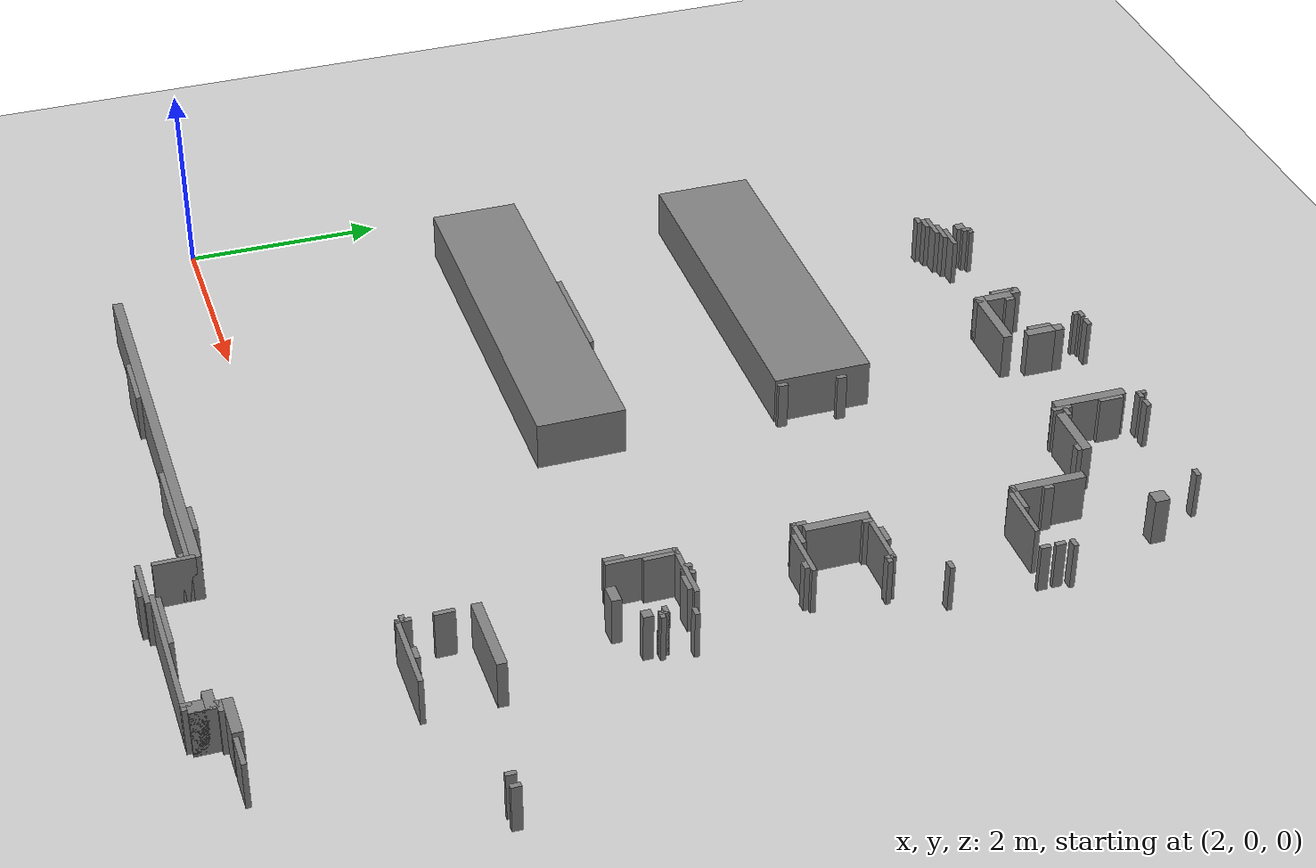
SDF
<sdf version="1.6">
 <world name="2F_world">
  <include><uri>model://ground_plane</uri></include>
  <include><uri>model://sun</uri></include>
  <model name="wall_1">
   <static>true</static>
   <pose>6.55 8.335 0.25 0 0 0</pose>
   <link name="link">
    <collision name="collision"><geometry><box><size>0.1 0.05 0.5</size></box></geometry></collision>
    <visual name="visual">
     <geometry><box><size>0.1 0.05 0.5</size></box></geometry>
     <material><ambient>0.5 0.5 0.5 1</ambient></material>
    </visual>
   </link>
  </model>
  <model name="wall_2">
   <static>true</static>
   <pose>6.7 8.335 0.25 0 0 0</pose>
   <link name="link">
    <collision name="collision"><geometry><box><size>0.1 0.05 0.5</size></box></geometry></collision>
    <visual name="visual">
     <geometry><box><size>0.1 0.05 0.5</size></box></geometry>
     <material><ambient>0.5 0.5 0.5 1</ambient></material>
    </visual>
   </link>
  </model>
  <model name="wall_3">
   <static>true</static>
   <pose>8.0 8.285 0.25 0 0 0</pose>
   <link name="link">
    <collision name="collision"><geometry><box><size>0.1 0.05 0.5</size></box></geometry></collision>
    <visual name="visual">
     <geometry><box><size>0.1 0.05 0.5</size></box></geometry>
     <material><ambient>0.5 0.5 0.5 1</ambient></material>
    </visual>
   </link>
  </model>
  <model name="wall_4">
   <static>true</static>
   <pose>8.15 8.285 0.25 0 0 0</pose>
   <link name="link">
    <collision name="collision"><geometry><box><size>0.1 0.05 0.5</size></box></geometry></collision>
    <visual name="visual">
     <geometry><box><size>0.1 0.05 0.5</size></box></geometry>
     <material><ambient>0.5 0.5 0.5 1</ambient></material>
    </visual>
   </link>
  </model>
  <model name="wall_5">
   <static>true</static>
   <pose>9.3 8.235 0.25 0 0 0</pose>
   <link name="link">
    <collision name="collision"><geometry><box><size>0.1 0.05 0.5</size></box></geometry></collision>
    <visual name="visual">
     <geometry><box><size>0.1 0.05 0.5</size></box></geometry>
     <material><ambient>0.5 0.5 0.5 1</ambient></material>
    </visual>
   </link>
  </model>
  <model name="wall_8">
   <static>true</static>
   <pose>6.7 8.01 0.25 0 0 0</pose>
   <link name="link">
    <collision name="collision"><geometry><box><size>0.1 0.1 0.5</size></box></geometry></collision>
    <visual name="visual">
     <geometry><box><size>0.1 0.1 0.5</size></box></geometry>
     <material><ambient>0.5 0.5 0.5 1</ambient></material>
    </visual>
   </link>
  </model>
  <model name="wall_11">
   <static>true</static>
   <pose>4.75 7.885 0.25 0 0 0</pose>
   <link name="link">
    <collision name="collision"><geometry><box><size>0.1 0.05 0.5</size></box></geometry></collision>
    <visual name="visual">
     <geometry><box><size>0.1 0.05 0.5</size></box></geometry>
     <material><ambient>0.5 0.5 0.5 1</ambient></material>
    </visual>
   </link>
  </model>
  <model name="wall_13">
   <static>true</static>
   <pose>5.95 7.86 0.25 0 0 0</pose>
   <link name="link">
    <collision name="collision"><geometry><box><size>0.1 0.1 0.5</size></box></geometry></collision>
    <visual name="visual">
     <geometry><box><size>0.1 0.1 0.5</size></box></geometry>
     <material><ambient>0.5 0.5 0.5 1</ambient></material>
    </visual>
   </link>
  </model>
  <model name="wall_14">
   <static>true</static>
   <pose>4.65 7.81 0.25 0 0 0</pose>
   <link name="link">
    <collision name="collision"><geometry><box><size>0.1 0.1 0.5</size></box></geometry></collision>
    <visual name="visual">
     <geometry><box><size>0.1 0.1 0.5</size></box></geometry>
     <material><ambient>0.5 0.5 0.5 1</ambient></material>
    </visual>
   </link>
  </model>
  <model name="wall_16">
   <static>true</static>
   <pose>9.525 7.735 0.25 0 0 0</pose>
   <link name="link">
    <collision name="collision"><geometry><box><size>0.15 0.15 0.5</size></box></geometry></collision>
    <visual name="visual">
     <geometry><box><size>0.15 0.15 0.5</size></box></geometry>
     <material><ambient>0.5 0.5 0.5 1</ambient></material>
    </visual>
   </link>
  </model>
  <model name="wall_17">
   <static>true</static>
   <pose>4.8 7.635 0.25 0 0 0</pose>
   <link name="link">
    <collision name="collision"><geometry><box><size>0.3 0.05 0.5</size></box></geometry></collision>
    <visual name="visual">
     <geometry><box><size>0.3 0.05 0.5</size></box></geometry>
     <material><ambient>0.5 0.5 0.5 1</ambient></material>
    </visual>
   </link>
  </model>
  <model name="wall_18">
   <static>true</static>
   <pose>4.675 7.585 0.25 0 0 0</pose>
   <link name="link">
    <collision name="collision"><geometry><box><size>0.25 0.05 0.5</size></box></geometry></collision>
    <visual name="visual">
     <geometry><box><size>0.25 0.05 0.5</size></box></geometry>
     <material><ambient>0.5 0.5 0.5 1</ambient></material>
    </visual>
   </link>
  </model>
  <model name="wall_19">
   <static>true</static>
   <pose>4.55 7.535 0.25 0 0 0</pose>
   <link name="link">
    <collision name="collision"><geometry><box><size>0.3 0.05 0.5</size></box></geometry></collision>
    <visual name="visual">
     <geometry><box><size>0.3 0.05 0.5</size></box></geometry>
     <material><ambient>0.5 0.5 0.5 1</ambient></material>
    </visual>
   </link>
  </model>
  <model name="wall_20">
   <static>true</static>
   <pose>4.475 7.485 0.25 0 0 0</pose>
   <link name="link">
    <collision name="collision"><geometry><box><size>0.15 0.05 0.5</size></box></geometry></collision>
    <visual name="visual">
     <geometry><box><size>0.15 0.05 0.5</size></box></geometry>
     <material><ambient>0.5 0.5 0.5 1</ambient></material>
    </visual>
   </link>
  </model>
  <model name="wall_21">
   <static>true</static>
   <pose>8.0 7.485 0.25 0 0 0</pose>
   <link name="link">
    <collision name="collision"><geometry><box><size>0.2 0.05 0.5</size></box></geometry></collision>
    <visual name="visual">
     <geometry><box><size>0.2 0.05 0.5</size></box></geometry>
     <material><ambient>0.5 0.5 0.5 1</ambient></material>
    </visual>
   </link>
  </model>
  <model name="wall_22">
   <static>true</static>
   <pose>4.4 7.435 0.25 0 0 0</pose>
   <link name="link">
    <collision name="collision"><geometry><box><size>0.1 0.05 0.5</size></box></geometry></collision>
    <visual name="visual">
     <geometry><box><size>0.1 0.05 0.5</size></box></geometry>
     <material><ambient>0.5 0.5 0.5 1</ambient></material>
    </visual>
   </link>
  </model>
  <model name="wall_23">
   <static>true</static>
   <pose>6.325 7.46 0.25 0 0 0</pose>
   <link name="link">
    <collision name="collision"><geometry><box><size>0.75 0.1 0.5</size></box></geometry></collision>
    <visual name="visual">
     <geometry><box><size>0.75 0.1 0.5</size></box></geometry>
     <material><ambient>0.5 0.5 0.5 1</ambient></material>
    </visual>
   </link>
  </model>
  <model name="wall_24">
   <static>true</static>
   <pose>8.35 7.41 0.25 0 0 0</pose>
   <link name="link">
    <collision name="collision"><geometry><box><size>0.6 0.1 0.5</size></box></geometry></collision>
    <visual name="visual">
     <geometry><box><size>0.6 0.1 0.5</size></box></geometry>
     <material><ambient>0.5 0.5 0.5 1</ambient></material>
    </visual>
   </link>
  </model>
  <model name="wall_25">
   <static>true</static>
   <pose>8.6 7.335 0.25 0 0 0</pose>
   <link name="link">
    <collision name="collision"><geometry><box><size>0.1 0.05 0.5</size></box></geometry></collision>
    <visual name="visual">
     <geometry><box><size>0.1 0.05 0.5</size></box></geometry>
     <material><ambient>0.5 0.5 0.5 1</ambient></material>
    </visual>
   </link>
  </model>
  <model name="wall_27">
   <static>true</static>
   <pose>9.9 6.685 0.25 0 0 0</pose>
   <link name="link">
    <collision name="collision"><geometry><box><size>0.1 0.05 0.5</size></box></geometry></collision>
    <visual name="visual">
     <geometry><box><size>0.1 0.05 0.5</size></box></geometry>
     <material><ambient>0.5 0.5 0.5 1</ambient></material>
    </visual>
   </link>
  </model>
  <model name="wall_28">
   <static>true</static>
   <pose>9.125 6.485 0.25 0 0 0</pose>
   <link name="link">
    <collision name="collision"><geometry><box><size>0.35 0.05 0.5</size></box></geometry></collision>
    <visual name="visual">
     <geometry><box><size>0.35 0.05 0.5</size></box></geometry>
     <material><ambient>0.5 0.5 0.5 1</ambient></material>
    </visual>
   </link>
  </model>
  <model name="wall_29">
   <static>true</static>
   <pose>9.35 6.435 0.25 0 0 0</pose>
   <link name="link">
    <collision name="collision"><geometry><box><size>0.6 0.05 0.5</size></box></geometry></collision>
    <visual name="visual">
     <geometry><box><size>0.6 0.05 0.5</size></box></geometry>
     <material><ambient>0.5 0.5 0.5 1</ambient></material>
    </visual>
   </link>
  </model>
  <model name="wall_30">
   <static>true</static>
   <pose>9.85 5.485 0.25 0 0 0</pose>
   <link name="link">
    <collision name="collision"><geometry><box><size>0.1 0.05 0.5</size></box></geometry></collision>
    <visual name="visual">
     <geometry><box><size>0.1 0.05 0.5</size></box></geometry>
     <material><ambient>0.5 0.5 0.5 1</ambient></material>
    </visual>
   </link>
  </model>
  <model name="wall_31">
   <static>true</static>
   <pose>9.25 5.085 0.25 0 0 0</pose>
   <link name="link">
    <collision name="collision"><geometry><box><size>0.2 0.05 0.5</size></box></geometry></collision>
    <visual name="visual">
     <geometry><box><size>0.2 0.05 0.5</size></box></geometry>
     <material><ambient>0.5 0.5 0.5 1</ambient></material>
    </visual>
   </link>
  </model>
  <model name="wall_32">
   <static>true</static>
   <pose>9.25 5.035 0.25 0 0 0</pose>
   <link name="link">
    <collision name="collision"><geometry><box><size>0.7 0.05 0.5</size></box></geometry></collision>
    <visual name="visual">
     <geometry><box><size>0.7 0.05 0.5</size></box></geometry>
     <material><ambient>0.5 0.5 0.5 1</ambient></material>
    </visual>
   </link>
  </model>
  <model name="wall_33">
   <static>true</static>
   <pose>4.875 5.46 0.25 0 0 0</pose>
   <link name="link">
    <collision name="collision"><geometry><box><size>3.65 1.0 0.5</size></box></geometry></collision>
    <visual name="visual">
     <geometry><box><size>3.65 1.0 0.5</size></box></geometry>
     <material><ambient>0.5 0.5 0.5 1</ambient></material>
    </visual>
   </link>
  </model>
  <model name="wall_34">
   <static>true</static>
   <pose>9.6 4.985 0.25 0 0 0</pose>
   <link name="link">
    <collision name="collision"><geometry><box><size>0.1 0.05 0.5</size></box></geometry></collision>
    <visual name="visual">
     <geometry><box><size>0.1 0.05 0.5</size></box></geometry>
     <material><ambient>0.5 0.5 0.5 1</ambient></material>
    </visual>
   </link>
  </model>
  <model name="wall_35">
   <static>true</static>
   <pose>9.0 4.335 0.25 0 0 0</pose>
   <link name="link">
    <collision name="collision"><geometry><box><size>0.3 0.05 0.5</size></box></geometry></collision>
    <visual name="visual">
     <geometry><box><size>0.3 0.05 0.5</size></box></geometry>
     <material><ambient>0.5 0.5 0.5 1</ambient></material>
    </visual>
   </link>
  </model>
  <model name="wall_36">
   <static>true</static>
   <pose>9.275 4.285 0.25 0 0 0</pose>
   <link name="link">
    <collision name="collision"><geometry><box><size>0.55 0.05 0.5</size></box></geometry></collision>
    <visual name="visual">
     <geometry><box><size>0.55 0.05 0.5</size></box></geometry>
     <material><ambient>0.5 0.5 0.5 1</ambient></material>
    </visual>
   </link>
  </model>
  <model name="wall_37">
   <static>true</static>
   <pose>9.45 4.235 0.25 0 0 0</pose>
   <link name="link">
    <collision name="collision"><geometry><box><size>0.1 0.05 0.5</size></box></geometry></collision>
    <visual name="visual">
     <geometry><box><size>0.1 0.05 0.5</size></box></geometry>
     <material><ambient>0.5 0.5 0.5 1</ambient></material>
    </visual>
   </link>
  </model>
  <model name="wall_38">
   <static>true</static>
   <pose>4.925 3.435 0.25 0 0 0</pose>
   <link name="link">
    <collision name="collision"><geometry><box><size>1.15 0.05 0.5</size></box></geometry></collision>
    <visual name="visual">
     <geometry><box><size>1.15 0.05 0.5</size></box></geometry>
     <material><ambient>0.5 0.5 0.5 1</ambient></material>
    </visual>
   </link>
  </model>
  <model name="wall_39">
   <static>true</static>
   <pose>9.175 3.185 0.25 0 0 0</pose>
   <link name="link">
    <collision name="collision"><geometry><box><size>0.65 0.05 0.5</size></box></geometry></collision>
    <visual name="visual">
     <geometry><box><size>0.65 0.05 0.5</size></box></geometry>
     <material><ambient>0.5 0.5 0.5 1</ambient></material>
    </visual>
   </link>
  </model>
  <model name="wall_40">
   <static>true</static>
   <pose>9.35 3.135 0.25 0 0 0</pose>
   <link name="link">
    <collision name="collision"><geometry><box><size>0.2 0.05 0.5</size></box></geometry></collision>
    <visual name="visual">
     <geometry><box><size>0.2 0.05 0.5</size></box></geometry>
     <material><ambient>0.5 0.5 0.5 1</ambient></material>
    </visual>
   </link>
  </model>
  <model name="wall_41">
   <static>true</static>
   <pose>9.75 3.085 0.25 0 0 0</pose>
   <link name="link">
    <collision name="collision"><geometry><box><size>0.1 0.05 0.5</size></box></geometry></collision>
    <visual name="visual">
     <geometry><box><size>0.1 0.05 0.5</size></box></geometry>
     <material><ambient>0.5 0.5 0.5 1</ambient></material>
    </visual>
   </link>
  </model>
  <model name="wall_42">
   <static>true</static>
   <pose>9.65 2.835 0.25 0 0 0</pose>
   <link name="link">
    <collision name="collision"><geometry><box><size>0.1 0.05 0.5</size></box></geometry></collision>
    <visual name="visual">
     <geometry><box><size>0.1 0.05 0.5</size></box></geometry>
     <material><ambient>0.5 0.5 0.5 1</ambient></material>
    </visual>
   </link>
  </model>
  <model name="wall_43">
   <static>true</static>
   <pose>9.7 2.785 0.25 0 0 0</pose>
   <link name="link">
    <collision name="collision"><geometry><box><size>0.1 0.05 0.5</size></box></geometry></collision>
    <visual name="visual">
     <geometry><box><size>0.1 0.05 0.5</size></box></geometry>
     <material><ambient>0.5 0.5 0.5 1</ambient></material>
    </visual>
   </link>
  </model>
  <model name="wall_44">
   <static>true</static>
   <pose>9.65 2.66 0.25 0 0 0</pose>
   <link name="link">
    <collision name="collision"><geometry><box><size>0.1 0.1 0.5</size></box></geometry></collision>
    <visual name="visual">
     <geometry><box><size>0.1 0.1 0.5</size></box></geometry>
     <material><ambient>0.5 0.5 0.5 1</ambient></material>
    </visual>
   </link>
  </model>
  <model name="wall_45">
   <static>true</static>
   <pose>4.725 2.96 0.25 0 0 0</pose>
   <link name="link">
    <collision name="collision"><geometry><box><size>3.95 0.9 0.5</size></box></geometry></collision>
    <visual name="visual">
     <geometry><box><size>3.95 0.9 0.5</size></box></geometry>
     <material><ambient>0.5 0.5 0.5 1</ambient></material>
    </visual>
   </link>
  </model>
  <model name="wall_47">
   <static>true</static>
   <pose>9.3 2.46 0.25 0 0 0</pose>
   <link name="link">
    <collision name="collision"><geometry><box><size>0.2 0.1 0.5</size></box></geometry></collision>
    <visual name="visual">
     <geometry><box><size>0.2 0.1 0.5</size></box></geometry>
     <material><ambient>0.5 0.5 0.5 1</ambient></material>
    </visual>
   </link>
  </model>
  <model name="wall_59">
   <static>true</static>
   <pose>9.475 1.26 0.25 0 0 0</pose>
   <link name="link">
    <collision name="collision"><geometry><box><size>0.85 0.1 0.5</size></box></geometry></collision>
    <visual name="visual">
     <geometry><box><size>0.85 0.1 0.5</size></box></geometry>
     <material><ambient>0.5 0.5 0.5 1</ambient></material>
    </visual>
   </link>
  </model>
  <model name="wall_68">
   <static>true</static>
   <pose>9.05 0.585 0.25 0 0 0</pose>
   <link name="link">
    <collision name="collision"><geometry><box><size>0.1 0.05 0.5</size></box></geometry></collision>
    <visual name="visual">
     <geometry><box><size>0.1 0.05 0.5</size></box></geometry>
     <material><ambient>0.5 0.5 0.5 1</ambient></material>
    </visual>
   </link>
  </model>
  <model name="wall_69">
   <static>true</static>
   <pose>9.525 0.585 0.25 0 0 0</pose>
   <link name="link">
    <collision name="collision"><geometry><box><size>0.15 0.05 0.5</size></box></geometry></collision>
    <visual name="visual">
     <geometry><box><size>0.15 0.05 0.5</size></box></geometry>
     <material><ambient>0.5 0.5 0.5 1</ambient></material>
    </visual>
   </link>
  </model>
  <model name="wall_70">
   <static>true</static>
   <pose>9.475 0.535 0.25 0 0 0</pose>
   <link name="link">
    <collision name="collision"><geometry><box><size>0.85 0.05 0.5</size></box></geometry></collision>
    <visual name="visual">
     <geometry><box><size>0.85 0.05 0.5</size></box></geometry>
     <material><ambient>0.5 0.5 0.5 1</ambient></material>
    </visual>
   </link>
  </model>
  <model name="wall_75">
   <static>true</static>
   <pose>7.075 -0.915 0.25 0 0 0</pose>
   <link name="link">
    <collision name="collision"><geometry><box><size>0.35 0.05 0.5</size></box></geometry></collision>
    <visual name="visual">
     <geometry><box><size>0.35 0.05 0.5</size></box></geometry>
     <material><ambient>0.5 0.5 0.5 1</ambient></material>
    </visual>
   </link>
  </model>
  <model name="wall_81">
   <static>true</static>
   <pose>5.5 -0.99 0.25 0 0 0</pose>
   <link name="link">
    <collision name="collision"><geometry><box><size>4.3 0.1 0.5</size></box></geometry></collision>
    <visual name="visual">
     <geometry><box><size>4.3 0.1 0.5</size></box></geometry>
     <material><ambient>0.5 0.5 0.5 1</ambient></material>
    </visual>
   </link>
  </model>
  <model name="wall_83">
   <static>true</static>
   <pose>4.75 -1.065 0.25 0 0 0</pose>
   <link name="link">
    <collision name="collision"><geometry><box><size>0.6 0.05 0.5</size></box></geometry></collision>
    <visual name="visual">
     <geometry><box><size>0.6 0.05 0.5</size></box></geometry>
     <material><ambient>0.5 0.5 0.5 1</ambient></material>
    </visual>
   </link>
  </model>
  <model name="wall_84">
   <static>true</static>
   <pose>6.975 -1.065 0.25 0 0 0</pose>
   <link name="link">
    <collision name="collision"><geometry><box><size>1.35 0.05 0.5</size></box></geometry></collision>
    <visual name="visual">
     <geometry><box><size>1.35 0.05 0.5</size></box></geometry>
     <material><ambient>0.5 0.5 0.5 1</ambient></material>
    </visual>
   </link>
  </model>
  <model name="wall_85">
   <static>true</static>
   <pose>7.6 -1.115 0.25 0 0 0</pose>
   <link name="link">
    <collision name="collision"><geometry><box><size>0.1 0.05 0.5</size></box></geometry></collision>
    <visual name="visual">
     <geometry><box><size>0.1 0.05 0.5</size></box></geometry>
     <material><ambient>0.5 0.5 0.5 1</ambient></material>
    </visual>
   </link>
  </model>
  <model name="wall_86">
   <static>true</static>
   <pose>9.825 -1.09 0.25 0 0 0</pose>
   <link name="link">
    <collision name="collision"><geometry><box><size>0.45 0.1 0.5</size></box></geometry></collision>
    <visual name="visual">
     <geometry><box><size>0.45 0.1 0.5</size></box></geometry>
     <material><ambient>0.5 0.5 0.5 1</ambient></material>
    </visual>
   </link>
  </model>
  <model name="wall_87">
   <static>true</static>
   <pose>10.275 -1.115 0.25 0 0 0</pose>
   <link name="link">
    <collision name="collision"><geometry><box><size>0.35 0.05 0.5</size></box></geometry></collision>
    <visual name="visual">
     <geometry><box><size>0.35 0.05 0.5</size></box></geometry>
     <material><ambient>0.5 0.5 0.5 1</ambient></material>
    </visual>
   </link>
  </model>
  <model name="wall_88">
   <static>true</static>
   <pose>9.675 -1.165 0.25 0 0 0</pose>
   <link name="link">
    <collision name="collision"><geometry><box><size>0.15 0.05 0.5</size></box></geometry></collision>
    <visual name="visual">
     <geometry><box><size>0.15 0.05 0.5</size></box></geometry>
     <material><ambient>0.5 0.5 0.5 1</ambient></material>
    </visual>
   </link>
  </model>
  <model name="wall_93">
   <static>true</static>
   <pose>9.575 -1.24 0.25 0 0 0</pose>
   <link name="link">
    <collision name="collision"><geometry><box><size>0.25 0.1 0.5</size></box></geometry></collision>
    <visual name="visual">
     <geometry><box><size>0.25 0.1 0.5</size></box></geometry>
     <material><ambient>0.5 0.5 0.5 1</ambient></material>
    </visual>
   </link>
  </model>
  <model name="wall_100">
   <static>true</static>
   <pose>8.425 -1.415 0.25 0 0 0</pose>
   <link name="link">
    <collision name="collision"><geometry><box><size>0.65 0.05 0.5</size></box></geometry></collision>
    <visual name="visual">
     <geometry><box><size>0.65 0.05 0.5</size></box></geometry>
     <material><ambient>0.5 0.5 0.5 1</ambient></material>
    </visual>
   </link>
  </model>
  <model name="wall_101">
   <static>true</static>
   <pose>9.625 -1.365 0.25 0 0 0</pose>
   <link name="link">
    <collision name="collision"><geometry><box><size>0.15 0.15 0.5</size></box></geometry></collision>
    <visual name="visual">
     <geometry><box><size>0.15 0.15 0.5</size></box></geometry>
     <material><ambient>0.5 0.5 0.5 1</ambient></material>
    </visual>
   </link>
  </model>
  <model name="wall_102">
   <static>true</static>
   <pose>8.85 -1.465 0.25 0 0 0</pose>
   <link name="link">
    <collision name="collision"><geometry><box><size>1.6 0.05 0.5</size></box></geometry></collision>
    <visual name="visual">
     <geometry><box><size>1.6 0.05 0.5</size></box></geometry>
     <material><ambient>0.5 0.5 0.5 1</ambient></material>
    </visual>
   </link>
  </model>
  <model name="wall_103">
   <static>true</static>
   <pose>7.875 -1.515 0.25 0 0 0</pose>
   <link name="link">
    <collision name="collision"><geometry><box><size>0.55 0.05 0.5</size></box></geometry></collision>
    <visual name="visual">
     <geometry><box><size>0.55 0.05 0.5</size></box></geometry>
     <material><ambient>0.5 0.5 0.5 1</ambient></material>
    </visual>
   </link>
  </model>
  <model name="wall_104">
   <static>true</static>
   <pose>7.925 -1.565 0.25 0 0 0</pose>
   <link name="link">
    <collision name="collision"><geometry><box><size>0.25 0.05 0.5</size></box></geometry></collision>
    <visual name="visual">
     <geometry><box><size>0.25 0.05 0.5</size></box></geometry>
     <material><ambient>0.5 0.5 0.5 1</ambient></material>
    </visual>
   </link>
  </model>
  <model name="wall_147">
   <static>true</static>
   <pose>4.725 7.86 0.25 0 0 0</pose>
   <link name="link">
    <collision name="collision"><geometry><box><size>0.05 0.1 0.5</size></box></geometry></collision>
    <visual name="visual">
     <geometry><box><size>0.05 0.1 0.5</size></box></geometry>
     <material><ambient>0.5 0.5 0.5 1</ambient></material>
    </visual>
   </link>
  </model>
  <model name="wall_148">
   <static>true</static>
   <pose>5.925 7.76 0.25 0 0 0</pose>
   <link name="link">
    <collision name="collision"><geometry><box><size>0.05 0.3 0.5</size></box></geometry></collision>
    <visual name="visual">
     <geometry><box><size>0.05 0.3 0.5</size></box></geometry>
     <material><ambient>0.5 0.5 0.5 1</ambient></material>
    </visual>
   </link>
  </model>
  <model name="wall_149">
   <static>true</static>
   <pose>6.0 7.61 0.25 0 0 0</pose>
   <link name="link">
    <collision name="collision"><geometry><box><size>0.1 0.4 0.5</size></box></geometry></collision>
    <visual name="visual">
     <geometry><box><size>0.1 0.4 0.5</size></box></geometry>
     <material><ambient>0.5 0.5 0.5 1</ambient></material>
    </visual>
   </link>
  </model>
  <model name="wall_150">
   <static>true</static>
   <pose>6.075 7.76 0.25 0 0 0</pose>
   <link name="link">
    <collision name="collision"><geometry><box><size>0.05 0.1 0.5</size></box></geometry></collision>
    <visual name="visual">
     <geometry><box><size>0.05 0.1 0.5</size></box></geometry>
     <material><ambient>0.5 0.5 0.5 1</ambient></material>
    </visual>
   </link>
  </model>
  <model name="wall_151">
   <static>true</static>
   <pose>6.525 8.31 0.25 0 0 0</pose>
   <link name="link">
    <collision name="collision"><geometry><box><size>0.05 0.1 0.5</size></box></geometry></collision>
    <visual name="visual">
     <geometry><box><size>0.05 0.1 0.5</size></box></geometry>
     <material><ambient>0.5 0.5 0.5 1</ambient></material>
    </visual>
   </link>
  </model>
  <model name="wall_152">
   <static>true</static>
   <pose>6.625 7.835 0.25 0 0 0</pose>
   <link name="link">
    <collision name="collision"><geometry><box><size>0.05 0.25 0.5</size></box></geometry></collision>
    <visual name="visual">
     <geometry><box><size>0.05 0.25 0.5</size></box></geometry>
     <material><ambient>0.5 0.5 0.5 1</ambient></material>
    </visual>
   </link>
  </model>
  <model name="wall_153">
   <static>true</static>
   <pose>6.7 7.86 0.25 0 0 0</pose>
   <link name="link">
    <collision name="collision"><geometry><box><size>0.1 0.4 0.5</size></box></geometry></collision>
    <visual name="visual">
     <geometry><box><size>0.1 0.4 0.5</size></box></geometry>
     <material><ambient>0.5 0.5 0.5 1</ambient></material>
    </visual>
   </link>
  </model>
  <model name="wall_154">
   <static>true</static>
   <pose>6.775 5.01 0.25 0 0 0</pose>
   <link name="link">
    <collision name="collision"><geometry><box><size>0.05 0.1 0.5</size></box></geometry></collision>
    <visual name="visual">
     <geometry><box><size>0.05 0.1 0.5</size></box></geometry>
     <material><ambient>0.5 0.5 0.5 1</ambient></material>
    </visual>
   </link>
  </model>
  <model name="wall_155">
   <static>true</static>
   <pose>6.825 5.61 0.25 0 0 0</pose>
   <link name="link">
    <collision name="collision"><geometry><box><size>0.05 0.1 0.5</size></box></geometry></collision>
    <visual name="visual">
     <geometry><box><size>0.05 0.1 0.5</size></box></geometry>
     <material><ambient>0.5 0.5 0.5 1</ambient></material>
    </visual>
   </link>
  </model>
  <model name="wall_156">
   <static>true</static>
   <pose>7.625 -1.19 0.25 0 0 0</pose>
   <link name="link">
    <collision name="collision"><geometry><box><size>0.05 0.4 0.5</size></box></geometry></collision>
    <visual name="visual">
     <geometry><box><size>0.05 0.4 0.5</size></box></geometry>
     <material><ambient>0.5 0.5 0.5 1</ambient></material>
    </visual>
   </link>
  </model>
  <model name="wall_157">
   <static>true</static>
   <pose>7.9 7.785 0.25 0 0 0</pose>
   <link name="link">
    <collision name="collision"><geometry><box><size>0.1 0.75 0.5</size></box></geometry></collision>
    <visual name="visual">
     <geometry><box><size>0.1 0.75 0.5</size></box></geometry>
     <material><ambient>0.5 0.5 0.5 1</ambient></material>
    </visual>
   </link>
  </model>
  <model name="wall_158">
   <static>true</static>
   <pose>7.975 8.31 0.25 0 0 0</pose>
   <link name="link">
    <collision name="collision"><geometry><box><size>0.05 0.1 0.5</size></box></geometry></collision>
    <visual name="visual">
     <geometry><box><size>0.05 0.1 0.5</size></box></geometry>
     <material><ambient>0.5 0.5 0.5 1</ambient></material>
    </visual>
   </link>
  </model>
  <model name="wall_159">
   <static>true</static>
   <pose>7.975 7.985 0.25 0 0 0</pose>
   <link name="link">
    <collision name="collision"><geometry><box><size>0.05 0.25 0.5</size></box></geometry></collision>
    <visual name="visual">
     <geometry><box><size>0.05 0.25 0.5</size></box></geometry>
     <material><ambient>0.5 0.5 0.5 1</ambient></material>
    </visual>
   </link>
  </model>
  <model name="wall_160">
   <static>true</static>
   <pose>7.975 7.46 0.25 0 0 0</pose>
   <link name="link">
    <collision name="collision"><geometry><box><size>0.05 0.2 0.5</size></box></geometry></collision>
    <visual name="visual">
     <geometry><box><size>0.05 0.2 0.5</size></box></geometry>
     <material><ambient>0.5 0.5 0.5 1</ambient></material>
    </visual>
   </link>
  </model>
  <model name="wall_161">
   <static>true</static>
   <pose>8.825 2.61 0.25 0 0 0</pose>
   <link name="link">
    <collision name="collision"><geometry><box><size>0.05 0.2 0.5</size></box></geometry></collision>
    <visual name="visual">
     <geometry><box><size>0.05 0.2 0.5</size></box></geometry>
     <material><ambient>0.5 0.5 0.5 1</ambient></material>
    </visual>
   </link>
  </model>
  <model name="wall_162">
   <static>true</static>
   <pose>8.875 4.385 0.25 0 0 0</pose>
   <link name="link">
    <collision name="collision"><geometry><box><size>0.05 0.15 0.5</size></box></geometry></collision>
    <visual name="visual">
     <geometry><box><size>0.05 0.15 0.5</size></box></geometry>
     <material><ambient>0.5 0.5 0.5 1</ambient></material>
    </visual>
   </link>
  </model>
  <model name="wall_163">
   <static>true</static>
   <pose>8.875 2.86 0.25 0 0 0</pose>
   <link name="link">
    <collision name="collision"><geometry><box><size>0.05 0.7 0.5</size></box></geometry></collision>
    <visual name="visual">
     <geometry><box><size>0.05 0.7 0.5</size></box></geometry>
     <material><ambient>0.5 0.5 0.5 1</ambient></material>
    </visual>
   </link>
  </model>
  <model name="wall_164">
   <static>true</static>
   <pose>8.925 3.035 0.25 0 0 0</pose>
   <link name="link">
    <collision name="collision"><geometry><box><size>0.05 0.35 0.5</size></box></geometry></collision>
    <visual name="visual">
     <geometry><box><size>0.05 0.35 0.5</size></box></geometry>
     <material><ambient>0.5 0.5 0.5 1</ambient></material>
    </visual>
   </link>
  </model>
  <model name="wall_165">
   <static>true</static>
   <pose>8.95 4.735 0.25 0 0 0</pose>
   <link name="link">
    <collision name="collision"><geometry><box><size>0.1 0.65 0.5</size></box></geometry></collision>
    <visual name="visual">
     <geometry><box><size>0.1 0.65 0.5</size></box></geometry>
     <material><ambient>0.5 0.5 0.5 1</ambient></material>
    </visual>
   </link>
  </model>
  <model name="wall_166">
   <static>true</static>
   <pose>9.0 6.835 0.25 0 0 0</pose>
   <link name="link">
    <collision name="collision"><geometry><box><size>0.1 0.75 0.5</size></box></geometry></collision>
    <visual name="visual">
     <geometry><box><size>0.1 0.75 0.5</size></box></geometry>
     <material><ambient>0.5 0.5 0.5 1</ambient></material>
    </visual>
   </link>
  </model>
  <model name="wall_167">
   <static>true</static>
   <pose>9.025 5.01 0.25 0 0 0</pose>
   <link name="link">
    <collision name="collision"><geometry><box><size>0.05 0.1 0.5</size></box></geometry></collision>
    <visual name="visual">
     <geometry><box><size>0.05 0.1 0.5</size></box></geometry>
     <material><ambient>0.5 0.5 0.5 1</ambient></material>
    </visual>
   </link>
  </model>
  <model name="wall_168">
   <static>true</static>
   <pose>9.075 6.81 0.25 0 0 0</pose>
   <link name="link">
    <collision name="collision"><geometry><box><size>0.05 0.1 0.5</size></box></geometry></collision>
    <visual name="visual">
     <geometry><box><size>0.05 0.1 0.5</size></box></geometry>
     <material><ambient>0.5 0.5 0.5 1</ambient></material>
    </visual>
   </link>
  </model>
  <model name="wall_169">
   <static>true</static>
   <pose>9.075 0.96 0.25 0 0 0</pose>
   <link name="link">
    <collision name="collision"><geometry><box><size>0.05 0.2 0.5</size></box></geometry></collision>
    <visual name="visual">
     <geometry><box><size>0.05 0.2 0.5</size></box></geometry>
     <material><ambient>0.5 0.5 0.5 1</ambient></material>
    </visual>
   </link>
  </model>
  <model name="wall_170">
   <static>true</static>
   <pose>9.075 0.585 0.25 0 0 0</pose>
   <link name="link">
    <collision name="collision"><geometry><box><size>0.05 0.15 0.5</size></box></geometry></collision>
    <visual name="visual">
     <geometry><box><size>0.05 0.15 0.5</size></box></geometry>
     <material><ambient>0.5 0.5 0.5 1</ambient></material>
    </visual>
   </link>
  </model>
  <model name="wall_171">
   <static>true</static>
   <pose>9.125 3.21 0.25 0 0 0</pose>
   <link name="link">
    <collision name="collision"><geometry><box><size>0.05 0.1 0.5</size></box></geometry></collision>
    <visual name="visual">
     <geometry><box><size>0.05 0.1 0.5</size></box></geometry>
     <material><ambient>0.5 0.5 0.5 1</ambient></material>
    </visual>
   </link>
  </model>
  <model name="wall_172">
   <static>true</static>
   <pose>9.225 3.21 0.25 0 0 0</pose>
   <link name="link">
    <collision name="collision"><geometry><box><size>0.05 0.1 0.5</size></box></geometry></collision>
    <visual name="visual">
     <geometry><box><size>0.05 0.1 0.5</size></box></geometry>
     <material><ambient>0.5 0.5 0.5 1</ambient></material>
    </visual>
   </link>
  </model>
  <model name="wall_173">
   <static>true</static>
   <pose>9.575 5.01 0.25 0 0 0</pose>
   <link name="link">
    <collision name="collision"><geometry><box><size>0.05 0.1 0.5</size></box></geometry></collision>
    <visual name="visual">
     <geometry><box><size>0.05 0.1 0.5</size></box></geometry>
     <material><ambient>0.5 0.5 0.5 1</ambient></material>
    </visual>
   </link>
  </model>
  <model name="wall_174">
   <static>true</static>
   <pose>9.575 -1.44 0.25 0 0 0</pose>
   <link name="link">
    <collision name="collision"><geometry><box><size>0.05 0.1 0.5</size></box></geometry></collision>
    <visual name="visual">
     <geometry><box><size>0.05 0.1 0.5</size></box></geometry>
     <material><ambient>0.5 0.5 0.5 1</ambient></material>
    </visual>
   </link>
  </model>
  <model name="wall_175">
   <static>true</static>
   <pose>9.675 2.81 0.25 0 0 0</pose>
   <link name="link">
    <collision name="collision"><geometry><box><size>0.05 0.1 0.5</size></box></geometry></collision>
    <visual name="visual">
     <geometry><box><size>0.05 0.1 0.5</size></box></geometry>
     <material><ambient>0.5 0.5 0.5 1</ambient></material>
    </visual>
   </link>
  </model>
  <model name="wall_176">
   <static>true</static>
   <pose>9.65 -1.24 0.25 0 0 0</pose>
   <link name="link">
    <collision name="collision"><geometry><box><size>0.1 0.4 0.5</size></box></geometry></collision>
    <visual name="visual">
     <geometry><box><size>0.1 0.4 0.5</size></box></geometry>
     <material><ambient>0.5 0.5 0.5 1</ambient></material>
    </visual>
   </link>
  </model>
  <model name="wall_177">
   <static>true</static>
   <pose>9.875 6.56 0.25 0 0 0</pose>
   <link name="link">
    <collision name="collision"><geometry><box><size>0.05 0.1 0.5</size></box></geometry></collision>
    <visual name="visual">
     <geometry><box><size>0.05 0.1 0.5</size></box></geometry>
     <material><ambient>0.5 0.5 0.5 1</ambient></material>
    </visual>
   </link>
  </model>
  <model name="wall_178">
   <static>true</static>
   <pose>9.875 6.41 0.25 0 0 0</pose>
   <link name="link">
    <collision name="collision"><geometry><box><size>0.05 0.1 0.5</size></box></geometry></collision>
    <visual name="visual">
     <geometry><box><size>0.05 0.1 0.5</size></box></geometry>
     <material><ambient>0.5 0.5 0.5 1</ambient></material>
    </visual>
   </link>
  </model>
  <model name="wall_179">
   <static>true</static>
   <pose>11.225 0.96 0.25 0 0 0</pose>
   <link name="link">
    <collision name="collision"><geometry><box><size>0.05 0.1 0.5</size></box></geometry></collision>
    <visual name="visual">
     <geometry><box><size>0.05 0.1 0.5</size></box></geometry>
     <material><ambient>0.5 0.5 0.5 1</ambient></material>
    </visual>
   </link>
  </model>
  <model name="wall_180">
   <static>true</static>
   <pose>11.375 0.96 0.25 0 0 0</pose>
   <link name="link">
    <collision name="collision"><geometry><box><size>0.05 0.1 0.5</size></box></geometry></collision>
    <visual name="visual">
     <geometry><box><size>0.05 0.1 0.5</size></box></geometry>
     <material><ambient>0.5 0.5 0.5 1</ambient></material>
    </visual>
   </link>
  </model>
 </world>
</sdf>
